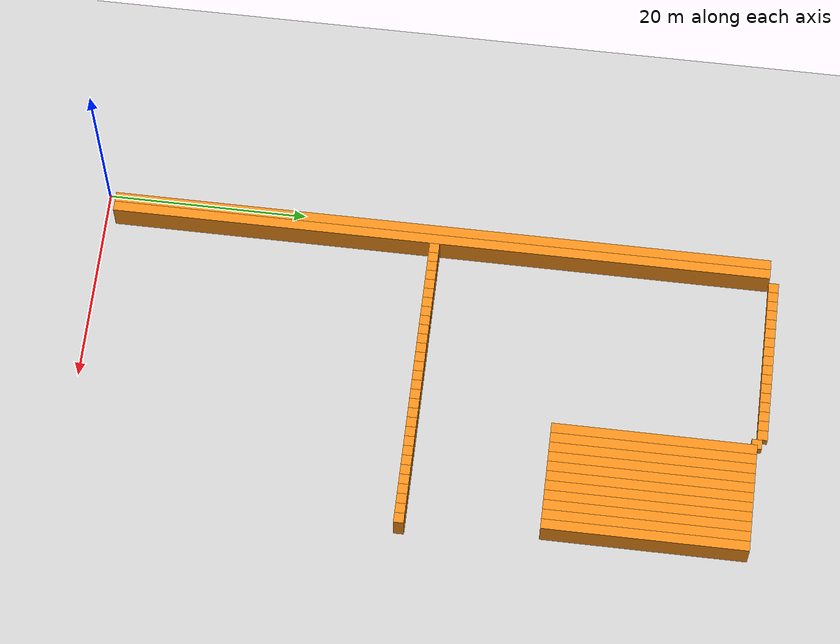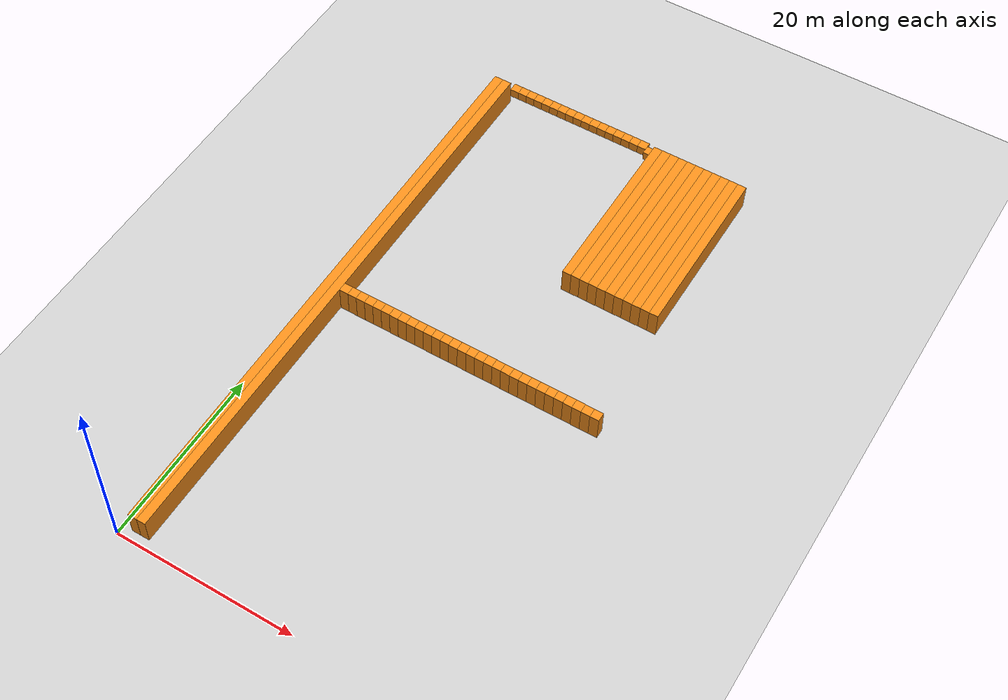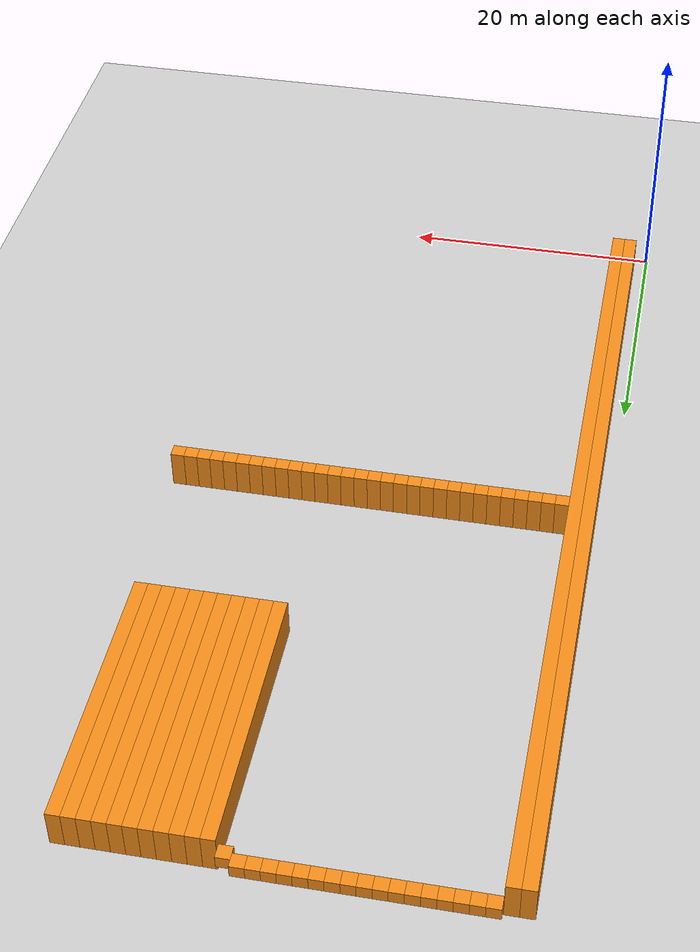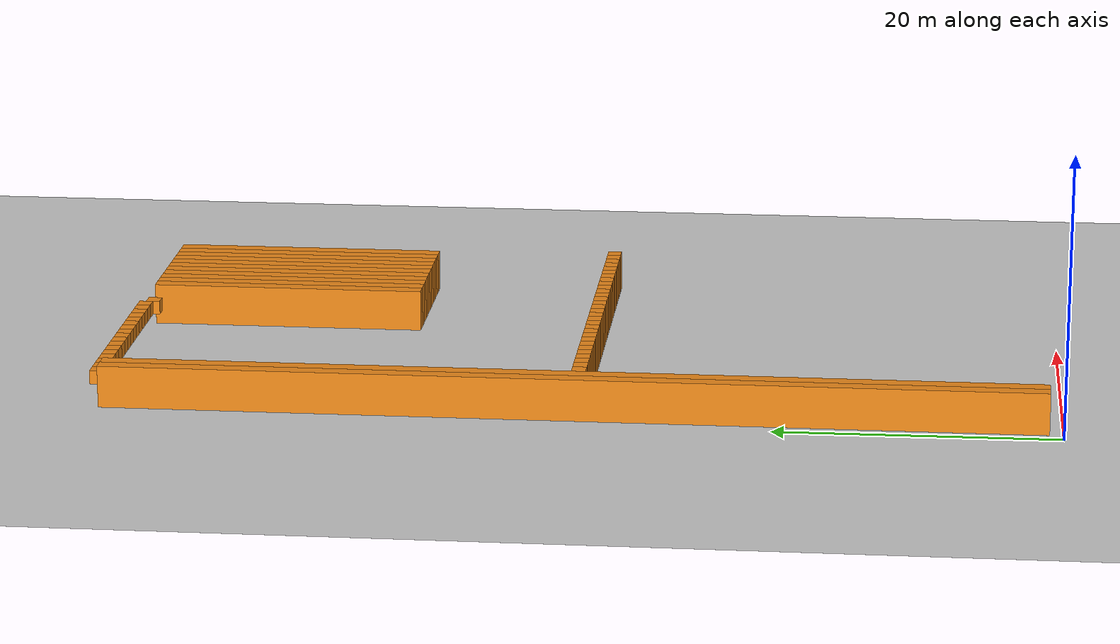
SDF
<sdf version="1.6">
 <world name="default">
  <include><uri>model://ground_plane</uri></include>
  <model name="unit_box_000">
   <pose>1.50    34.00     1.50 0 0 0</pose>
   <static>1</static>
   <link name="link">
    <inertial>
     <mass>5000</mass>
     <inertia><ixx>200</ixx><ixy>0</ixy><ixz>0</ixz><iyy>200</iyy><iyz>0</iyz><izz>200</izz></inertia>
    </inertial>
    <collision name="collision"><geometry><box><size>1 66 3</size></box></geometry></collision>
    <visual name="visual">
     <geometry><box><size>1 66 3</size></box></geometry>
     <material>
      <script><name>Gazebo/Orange</name><uri>file://media/materials/scripts/gazebo.material</uri></script>
     </material>
    </visual>
   </link>
  </model>
  <model name="unit_box_001">
   <pose>2.50    34.00     1.50 0 0 0</pose>
   <static>1</static>
   <link name="link">
    <inertial>
     <mass>5000</mass>
     <inertia><ixx>200</ixx><ixy>0</ixy><ixz>0</ixz><iyy>200</iyy><iyz>0</iyz><izz>200</izz></inertia>
    </inertial>
    <collision name="collision"><geometry><box><size>1 66 3</size></box></geometry></collision>
    <visual name="visual">
     <geometry><box><size>1 66 3</size></box></geometry>
     <material>
      <script><name>Gazebo/Orange</name><uri>file://media/materials/scripts/gazebo.material</uri></script>
     </material>
    </visual>
   </link>
  </model>
  <model name="unit_box_003">
   <pose>3.50    33.50     1.50 0 0 0</pose>
   <static>1</static>
   <link name="link">
    <inertial>
     <mass>5000</mass>
     <inertia><ixx>200</ixx><ixy>0</ixy><ixz>0</ixz><iyy>200</iyy><iyz>0</iyz><izz>200</izz></inertia>
    </inertial>
    <collision name="collision"><geometry><box><size>1 1 3</size></box></geometry></collision>
    <visual name="visual">
     <geometry><box><size>1 1 3</size></box></geometry>
     <material>
      <script><name>Gazebo/Orange</name><uri>file://media/materials/scripts/gazebo.material</uri></script>
     </material>
    </visual>
   </link>
  </model>
  <model name="unit_box_004">
   <pose>3.50    67.50     1.50 0 0 0</pose>
   <static>1</static>
   <link name="link">
    <inertial>
     <mass>5000</mass>
     <inertia><ixx>200</ixx><ixy>0</ixy><ixz>0</ixz><iyy>200</iyy><iyz>0</iyz><izz>200</izz></inertia>
    </inertial>
    <collision name="collision"><geometry><box><size>1 1 1</size></box></geometry></collision>
    <visual name="visual">
     <geometry><box><size>1 1 1</size></box></geometry>
     <material>
      <script><name>Gazebo/Orange</name><uri>file://media/materials/scripts/gazebo.material</uri></script>
     </material>
    </visual>
   </link>
  </model>
  <model name="unit_box_006">
   <pose>4.50    33.50     1.50 0 0 0</pose>
   <static>1</static>
   <link name="link">
    <inertial>
     <mass>5000</mass>
     <inertia><ixx>200</ixx><ixy>0</ixy><ixz>0</ixz><iyy>200</iyy><iyz>0</iyz><izz>200</izz></inertia>
    </inertial>
    <collision name="collision"><geometry><box><size>1 1 3</size></box></geometry></collision>
    <visual name="visual">
     <geometry><box><size>1 1 3</size></box></geometry>
     <material>
      <script><name>Gazebo/Orange</name><uri>file://media/materials/scripts/gazebo.material</uri></script>
     </material>
    </visual>
   </link>
  </model>
  <model name="unit_box_007">
   <pose>4.50    67.50     1.50 0 0 0</pose>
   <static>1</static>
   <link name="link">
    <inertial>
     <mass>5000</mass>
     <inertia><ixx>200</ixx><ixy>0</ixy><ixz>0</ixz><iyy>200</iyy><iyz>0</iyz><izz>200</izz></inertia>
    </inertial>
    <collision name="collision"><geometry><box><size>1 1 1</size></box></geometry></collision>
    <visual name="visual">
     <geometry><box><size>1 1 1</size></box></geometry>
     <material>
      <script><name>Gazebo/Orange</name><uri>file://media/materials/scripts/gazebo.material</uri></script>
     </material>
    </visual>
   </link>
  </model>
  <model name="unit_box_009">
   <pose>5.50    33.50     1.50 0 0 0</pose>
   <static>1</static>
   <link name="link">
    <inertial>
     <mass>5000</mass>
     <inertia><ixx>200</ixx><ixy>0</ixy><ixz>0</ixz><iyy>200</iyy><iyz>0</iyz><izz>200</izz></inertia>
    </inertial>
    <collision name="collision"><geometry><box><size>1 1 3</size></box></geometry></collision>
    <visual name="visual">
     <geometry><box><size>1 1 3</size></box></geometry>
     <material>
      <script><name>Gazebo/Orange</name><uri>file://media/materials/scripts/gazebo.material</uri></script>
     </material>
    </visual>
   </link>
  </model>
  <model name="unit_box_010">
   <pose>5.50    67.50     1.50 0 0 0</pose>
   <static>1</static>
   <link name="link">
    <inertial>
     <mass>5000</mass>
     <inertia><ixx>200</ixx><ixy>0</ixy><ixz>0</ixz><iyy>200</iyy><iyz>0</iyz><izz>200</izz></inertia>
    </inertial>
    <collision name="collision"><geometry><box><size>1 1 1</size></box></geometry></collision>
    <visual name="visual">
     <geometry><box><size>1 1 1</size></box></geometry>
     <material>
      <script><name>Gazebo/Orange</name><uri>file://media/materials/scripts/gazebo.material</uri></script>
     </material>
    </visual>
   </link>
  </model>
  <model name="unit_box_012">
   <pose>6.50    33.50     1.50 0 0 0</pose>
   <static>1</static>
   <link name="link">
    <inertial>
     <mass>5000</mass>
     <inertia><ixx>200</ixx><ixy>0</ixy><ixz>0</ixz><iyy>200</iyy><iyz>0</iyz><izz>200</izz></inertia>
    </inertial>
    <collision name="collision"><geometry><box><size>1 1 3</size></box></geometry></collision>
    <visual name="visual">
     <geometry><box><size>1 1 3</size></box></geometry>
     <material>
      <script><name>Gazebo/Orange</name><uri>file://media/materials/scripts/gazebo.material</uri></script>
     </material>
    </visual>
   </link>
  </model>
  <model name="unit_box_013">
   <pose>6.50    67.50     1.50 0 0 0</pose>
   <static>1</static>
   <link name="link">
    <inertial>
     <mass>5000</mass>
     <inertia><ixx>200</ixx><ixy>0</ixy><ixz>0</ixz><iyy>200</iyy><iyz>0</iyz><izz>200</izz></inertia>
    </inertial>
    <collision name="collision"><geometry><box><size>1 1 1</size></box></geometry></collision>
    <visual name="visual">
     <geometry><box><size>1 1 1</size></box></geometry>
     <material>
      <script><name>Gazebo/Orange</name><uri>file://media/materials/scripts/gazebo.material</uri></script>
     </material>
    </visual>
   </link>
  </model>
  <model name="unit_box_015">
   <pose>7.50    33.50     1.50 0 0 0</pose>
   <static>1</static>
   <link name="link">
    <inertial>
     <mass>5000</mass>
     <inertia><ixx>200</ixx><ixy>0</ixy><ixz>0</ixz><iyy>200</iyy><iyz>0</iyz><izz>200</izz></inertia>
    </inertial>
    <collision name="collision"><geometry><box><size>1 1 3</size></box></geometry></collision>
    <visual name="visual">
     <geometry><box><size>1 1 3</size></box></geometry>
     <material>
      <script><name>Gazebo/Orange</name><uri>file://media/materials/scripts/gazebo.material</uri></script>
     </material>
    </visual>
   </link>
  </model>
  <model name="unit_box_016">
   <pose>7.50    67.50     1.50 0 0 0</pose>
   <static>1</static>
   <link name="link">
    <inertial>
     <mass>5000</mass>
     <inertia><ixx>200</ixx><ixy>0</ixy><ixz>0</ixz><iyy>200</iyy><iyz>0</iyz><izz>200</izz></inertia>
    </inertial>
    <collision name="collision"><geometry><box><size>1 1 1</size></box></geometry></collision>
    <visual name="visual">
     <geometry><box><size>1 1 1</size></box></geometry>
     <material>
      <script><name>Gazebo/Orange</name><uri>file://media/materials/scripts/gazebo.material</uri></script>
     </material>
    </visual>
   </link>
  </model>
  <model name="unit_box_018">
   <pose>8.50    33.50     1.50 0 0 0</pose>
   <static>1</static>
   <link name="link">
    <inertial>
     <mass>5000</mass>
     <inertia><ixx>200</ixx><ixy>0</ixy><ixz>0</ixz><iyy>200</iyy><iyz>0</iyz><izz>200</izz></inertia>
    </inertial>
    <collision name="collision"><geometry><box><size>1 1 3</size></box></geometry></collision>
    <visual name="visual">
     <geometry><box><size>1 1 3</size></box></geometry>
     <material>
      <script><name>Gazebo/Orange</name><uri>file://media/materials/scripts/gazebo.material</uri></script>
     </material>
    </visual>
   </link>
  </model>
  <model name="unit_box_019">
   <pose>8.50    67.50     1.50 0 0 0</pose>
   <static>1</static>
   <link name="link">
    <inertial>
     <mass>5000</mass>
     <inertia><ixx>200</ixx><ixy>0</ixy><ixz>0</ixz><iyy>200</iyy><iyz>0</iyz><izz>200</izz></inertia>
    </inertial>
    <collision name="collision"><geometry><box><size>1 1 1</size></box></geometry></collision>
    <visual name="visual">
     <geometry><box><size>1 1 1</size></box></geometry>
     <material>
      <script><name>Gazebo/Orange</name><uri>file://media/materials/scripts/gazebo.material</uri></script>
     </material>
    </visual>
   </link>
  </model>
  <model name="unit_box_021">
   <pose>9.50    33.50     1.50 0 0 0</pose>
   <static>1</static>
   <link name="link">
    <inertial>
     <mass>5000</mass>
     <inertia><ixx>200</ixx><ixy>0</ixy><ixz>0</ixz><iyy>200</iyy><iyz>0</iyz><izz>200</izz></inertia>
    </inertial>
    <collision name="collision"><geometry><box><size>1 1 3</size></box></geometry></collision>
    <visual name="visual">
     <geometry><box><size>1 1 3</size></box></geometry>
     <material>
      <script><name>Gazebo/Orange</name><uri>file://media/materials/scripts/gazebo.material</uri></script>
     </material>
    </visual>
   </link>
  </model>
  <model name="unit_box_022">
   <pose>9.50    67.50     1.50 0 0 0</pose>
   <static>1</static>
   <link name="link">
    <inertial>
     <mass>5000</mass>
     <inertia><ixx>200</ixx><ixy>0</ixy><ixz>0</ixz><iyy>200</iyy><iyz>0</iyz><izz>200</izz></inertia>
    </inertial>
    <collision name="collision"><geometry><box><size>1 1 1</size></box></geometry></collision>
    <visual name="visual">
     <geometry><box><size>1 1 1</size></box></geometry>
     <material>
      <script><name>Gazebo/Orange</name><uri>file://media/materials/scripts/gazebo.material</uri></script>
     </material>
    </visual>
   </link>
  </model>
  <model name="unit_box_024">
   <pose>10.50    33.50     1.50 0 0 0</pose>
   <static>1</static>
   <link name="link">
    <inertial>
     <mass>5000</mass>
     <inertia><ixx>200</ixx><ixy>0</ixy><ixz>0</ixz><iyy>200</iyy><iyz>0</iyz><izz>200</izz></inertia>
    </inertial>
    <collision name="collision"><geometry><box><size>1 1 3</size></box></geometry></collision>
    <visual name="visual">
     <geometry><box><size>1 1 3</size></box></geometry>
     <material>
      <script><name>Gazebo/Orange</name><uri>file://media/materials/scripts/gazebo.material</uri></script>
     </material>
    </visual>
   </link>
  </model>
  <model name="unit_box_025">
   <pose>10.50    67.50     1.50 0 0 0</pose>
   <static>1</static>
   <link name="link">
    <inertial>
     <mass>5000</mass>
     <inertia><ixx>200</ixx><ixy>0</ixy><ixz>0</ixz><iyy>200</iyy><iyz>0</iyz><izz>200</izz></inertia>
    </inertial>
    <collision name="collision"><geometry><box><size>1 1 1</size></box></geometry></collision>
    <visual name="visual">
     <geometry><box><size>1 1 1</size></box></geometry>
     <material>
      <script><name>Gazebo/Orange</name><uri>file://media/materials/scripts/gazebo.material</uri></script>
     </material>
    </visual>
   </link>
  </model>
  <model name="unit_box_027">
   <pose>11.50    33.50     1.50 0 0 0</pose>
   <static>1</static>
   <link name="link">
    <inertial>
     <mass>5000</mass>
     <inertia><ixx>200</ixx><ixy>0</ixy><ixz>0</ixz><iyy>200</iyy><iyz>0</iyz><izz>200</izz></inertia>
    </inertial>
    <collision name="collision"><geometry><box><size>1 1 3</size></box></geometry></collision>
    <visual name="visual">
     <geometry><box><size>1 1 3</size></box></geometry>
     <material>
      <script><name>Gazebo/Orange</name><uri>file://media/materials/scripts/gazebo.material</uri></script>
     </material>
    </visual>
   </link>
  </model>
  <model name="unit_box_028">
   <pose>11.50    67.50     1.50 0 0 0</pose>
   <static>1</static>
   <link name="link">
    <inertial>
     <mass>5000</mass>
     <inertia><ixx>200</ixx><ixy>0</ixy><ixz>0</ixz><iyy>200</iyy><iyz>0</iyz><izz>200</izz></inertia>
    </inertial>
    <collision name="collision"><geometry><box><size>1 1 1</size></box></geometry></collision>
    <visual name="visual">
     <geometry><box><size>1 1 1</size></box></geometry>
     <material>
      <script><name>Gazebo/Orange</name><uri>file://media/materials/scripts/gazebo.material</uri></script>
     </material>
    </visual>
   </link>
  </model>
  <model name="unit_box_030">
   <pose>12.50    33.50     1.50 0 0 0</pose>
   <static>1</static>
   <link name="link">
    <inertial>
     <mass>5000</mass>
     <inertia><ixx>200</ixx><ixy>0</ixy><ixz>0</ixz><iyy>200</iyy><iyz>0</iyz><izz>200</izz></inertia>
    </inertial>
    <collision name="collision"><geometry><box><size>1 1 3</size></box></geometry></collision>
    <visual name="visual">
     <geometry><box><size>1 1 3</size></box></geometry>
     <material>
      <script><name>Gazebo/Orange</name><uri>file://media/materials/scripts/gazebo.material</uri></script>
     </material>
    </visual>
   </link>
  </model>
  <model name="unit_box_031">
   <pose>12.50    67.50     1.50 0 0 0</pose>
   <static>1</static>
   <link name="link">
    <inertial>
     <mass>5000</mass>
     <inertia><ixx>200</ixx><ixy>0</ixy><ixz>0</ixz><iyy>200</iyy><iyz>0</iyz><izz>200</izz></inertia>
    </inertial>
    <collision name="collision"><geometry><box><size>1 1 1</size></box></geometry></collision>
    <visual name="visual">
     <geometry><box><size>1 1 1</size></box></geometry>
     <material>
      <script><name>Gazebo/Orange</name><uri>file://media/materials/scripts/gazebo.material</uri></script>
     </material>
    </visual>
   </link>
  </model>
  <model name="unit_box_033">
   <pose>13.50    33.50     1.50 0 0 0</pose>
   <static>1</static>
   <link name="link">
    <inertial>
     <mass>5000</mass>
     <inertia><ixx>200</ixx><ixy>0</ixy><ixz>0</ixz><iyy>200</iyy><iyz>0</iyz><izz>200</izz></inertia>
    </inertial>
    <collision name="collision"><geometry><box><size>1 1 3</size></box></geometry></collision>
    <visual name="visual">
     <geometry><box><size>1 1 3</size></box></geometry>
     <material>
      <script><name>Gazebo/Orange</name><uri>file://media/materials/scripts/gazebo.material</uri></script>
     </material>
    </visual>
   </link>
  </model>
  <model name="unit_box_034">
   <pose>13.50    67.50     1.50 0 0 0</pose>
   <static>1</static>
   <link name="link">
    <inertial>
     <mass>5000</mass>
     <inertia><ixx>200</ixx><ixy>0</ixy><ixz>0</ixz><iyy>200</iyy><iyz>0</iyz><izz>200</izz></inertia>
    </inertial>
    <collision name="collision"><geometry><box><size>1 1 1</size></box></geometry></collision>
    <visual name="visual">
     <geometry><box><size>1 1 1</size></box></geometry>
     <material>
      <script><name>Gazebo/Orange</name><uri>file://media/materials/scripts/gazebo.material</uri></script>
     </material>
    </visual>
   </link>
  </model>
  <model name="unit_box_036">
   <pose>14.50    33.50     1.50 0 0 0</pose>
   <static>1</static>
   <link name="link">
    <inertial>
     <mass>5000</mass>
     <inertia><ixx>200</ixx><ixy>0</ixy><ixz>0</ixz><iyy>200</iyy><iyz>0</iyz><izz>200</izz></inertia>
    </inertial>
    <collision name="collision"><geometry><box><size>1 1 3</size></box></geometry></collision>
    <visual name="visual">
     <geometry><box><size>1 1 3</size></box></geometry>
     <material>
      <script><name>Gazebo/Orange</name><uri>file://media/materials/scripts/gazebo.material</uri></script>
     </material>
    </visual>
   </link>
  </model>
  <model name="unit_box_037">
   <pose>14.50    67.50     1.50 0 0 0</pose>
   <static>1</static>
   <link name="link">
    <inertial>
     <mass>5000</mass>
     <inertia><ixx>200</ixx><ixy>0</ixy><ixz>0</ixz><iyy>200</iyy><iyz>0</iyz><izz>200</izz></inertia>
    </inertial>
    <collision name="collision"><geometry><box><size>1 1 1</size></box></geometry></collision>
    <visual name="visual">
     <geometry><box><size>1 1 1</size></box></geometry>
     <material>
      <script><name>Gazebo/Orange</name><uri>file://media/materials/scripts/gazebo.material</uri></script>
     </material>
    </visual>
   </link>
  </model>
  <model name="unit_box_039">
   <pose>15.50    33.50     1.50 0 0 0</pose>
   <static>1</static>
   <link name="link">
    <inertial>
     <mass>5000</mass>
     <inertia><ixx>200</ixx><ixy>0</ixy><ixz>0</ixz><iyy>200</iyy><iyz>0</iyz><izz>200</izz></inertia>
    </inertial>
    <collision name="collision"><geometry><box><size>1 1 3</size></box></geometry></collision>
    <visual name="visual">
     <geometry><box><size>1 1 3</size></box></geometry>
     <material>
      <script><name>Gazebo/Orange</name><uri>file://media/materials/scripts/gazebo.material</uri></script>
     </material>
    </visual>
   </link>
  </model>
  <model name="unit_box_040">
   <pose>15.50    67.50     1.50 0 0 0</pose>
   <static>1</static>
   <link name="link">
    <inertial>
     <mass>5000</mass>
     <inertia><ixx>200</ixx><ixy>0</ixy><ixz>0</ixz><iyy>200</iyy><iyz>0</iyz><izz>200</izz></inertia>
    </inertial>
    <collision name="collision"><geometry><box><size>1 1 1</size></box></geometry></collision>
    <visual name="visual">
     <geometry><box><size>1 1 1</size></box></geometry>
     <material>
      <script><name>Gazebo/Orange</name><uri>file://media/materials/scripts/gazebo.material</uri></script>
     </material>
    </visual>
   </link>
  </model>
  <model name="unit_box_042">
   <pose>16.50    33.50     1.50 0 0 0</pose>
   <static>1</static>
   <link name="link">
    <inertial>
     <mass>5000</mass>
     <inertia><ixx>200</ixx><ixy>0</ixy><ixz>0</ixz><iyy>200</iyy><iyz>0</iyz><izz>200</izz></inertia>
    </inertial>
    <collision name="collision"><geometry><box><size>1 1 3</size></box></geometry></collision>
    <visual name="visual">
     <geometry><box><size>1 1 3</size></box></geometry>
     <material>
      <script><name>Gazebo/Orange</name><uri>file://media/materials/scripts/gazebo.material</uri></script>
     </material>
    </visual>
   </link>
  </model>
  <model name="unit_box_043">
   <pose>16.50    67.50     1.50 0 0 0</pose>
   <static>1</static>
   <link name="link">
    <inertial>
     <mass>5000</mass>
     <inertia><ixx>200</ixx><ixy>0</ixy><ixz>0</ixz><iyy>200</iyy><iyz>0</iyz><izz>200</izz></inertia>
    </inertial>
    <collision name="collision"><geometry><box><size>1 1 1</size></box></geometry></collision>
    <visual name="visual">
     <geometry><box><size>1 1 1</size></box></geometry>
     <material>
      <script><name>Gazebo/Orange</name><uri>file://media/materials/scripts/gazebo.material</uri></script>
     </material>
    </visual>
   </link>
  </model>
  <model name="unit_box_045">
   <pose>17.50    33.50     1.50 0 0 0</pose>
   <static>1</static>
   <link name="link">
    <inertial>
     <mass>5000</mass>
     <inertia><ixx>200</ixx><ixy>0</ixy><ixz>0</ixz><iyy>200</iyy><iyz>0</iyz><izz>200</izz></inertia>
    </inertial>
    <collision name="collision"><geometry><box><size>1 1 3</size></box></geometry></collision>
    <visual name="visual">
     <geometry><box><size>1 1 3</size></box></geometry>
     <material>
      <script><name>Gazebo/Orange</name><uri>file://media/materials/scripts/gazebo.material</uri></script>
     </material>
    </visual>
   </link>
  </model>
  <model name="unit_box_046">
   <pose>17.50    67.50     1.50 0 0 0</pose>
   <static>1</static>
   <link name="link">
    <inertial>
     <mass>5000</mass>
     <inertia><ixx>200</ixx><ixy>0</ixy><ixz>0</ixz><iyy>200</iyy><iyz>0</iyz><izz>200</izz></inertia>
    </inertial>
    <collision name="collision"><geometry><box><size>1 1 1</size></box></geometry></collision>
    <visual name="visual">
     <geometry><box><size>1 1 1</size></box></geometry>
     <material>
      <script><name>Gazebo/Orange</name><uri>file://media/materials/scripts/gazebo.material</uri></script>
     </material>
    </visual>
   </link>
  </model>
  <model name="unit_box_048">
   <pose>18.50    33.50     1.50 0 0 0</pose>
   <static>1</static>
   <link name="link">
    <inertial>
     <mass>5000</mass>
     <inertia><ixx>200</ixx><ixy>0</ixy><ixz>0</ixz><iyy>200</iyy><iyz>0</iyz><izz>200</izz></inertia>
    </inertial>
    <collision name="collision"><geometry><box><size>1 1 3</size></box></geometry></collision>
    <visual name="visual">
     <geometry><box><size>1 1 3</size></box></geometry>
     <material>
      <script><name>Gazebo/Orange</name><uri>file://media/materials/scripts/gazebo.material</uri></script>
     </material>
    </visual>
   </link>
  </model>
  <model name="unit_box_049">
   <pose>18.50    67.50     1.50 0 0 0</pose>
   <static>1</static>
   <link name="link">
    <inertial>
     <mass>5000</mass>
     <inertia><ixx>200</ixx><ixy>0</ixy><ixz>0</ixz><iyy>200</iyy><iyz>0</iyz><izz>200</izz></inertia>
    </inertial>
    <collision name="collision"><geometry><box><size>1 1 1</size></box></geometry></collision>
    <visual name="visual">
     <geometry><box><size>1 1 1</size></box></geometry>
     <material>
      <script><name>Gazebo/Orange</name><uri>file://media/materials/scripts/gazebo.material</uri></script>
     </material>
    </visual>
   </link>
  </model>
  <model name="unit_box_051">
   <pose>19.50    33.50     1.50 0 0 0</pose>
   <static>1</static>
   <link name="link">
    <inertial>
     <mass>5000</mass>
     <inertia><ixx>200</ixx><ixy>0</ixy><ixz>0</ixz><iyy>200</iyy><iyz>0</iyz><izz>200</izz></inertia>
    </inertial>
    <collision name="collision"><geometry><box><size>1 1 3</size></box></geometry></collision>
    <visual name="visual">
     <geometry><box><size>1 1 3</size></box></geometry>
     <material>
      <script><name>Gazebo/Orange</name><uri>file://media/materials/scripts/gazebo.material</uri></script>
     </material>
    </visual>
   </link>
  </model>
  <model name="unit_box_052">
   <pose>19.50    67.50     1.50 0 0 0</pose>
   <static>1</static>
   <link name="link">
    <inertial>
     <mass>5000</mass>
     <inertia><ixx>200</ixx><ixy>0</ixy><ixz>0</ixz><iyy>200</iyy><iyz>0</iyz><izz>200</izz></inertia>
    </inertial>
    <collision name="collision"><geometry><box><size>1 1 1</size></box></geometry></collision>
    <visual name="visual">
     <geometry><box><size>1 1 1</size></box></geometry>
     <material>
      <script><name>Gazebo/Orange</name><uri>file://media/materials/scripts/gazebo.material</uri></script>
     </material>
    </visual>
   </link>
  </model>
  <model name="unit_box_054">
   <pose>20.50    33.50     1.50 0 0 0</pose>
   <static>1</static>
   <link name="link">
    <inertial>
     <mass>5000</mass>
     <inertia><ixx>200</ixx><ixy>0</ixy><ixz>0</ixz><iyy>200</iyy><iyz>0</iyz><izz>200</izz></inertia>
    </inertial>
    <collision name="collision"><geometry><box><size>1 1 3</size></box></geometry></collision>
    <visual name="visual">
     <geometry><box><size>1 1 3</size></box></geometry>
     <material>
      <script><name>Gazebo/Orange</name><uri>file://media/materials/scripts/gazebo.material</uri></script>
     </material>
    </visual>
   </link>
  </model>
  <model name="unit_box_055">
   <pose>20.50    67.00     1.50 0 0 0</pose>
   <static>1</static>
   <link name="link">
    <inertial>
     <mass>5000</mass>
     <inertia><ixx>200</ixx><ixy>0</ixy><ixz>0</ixz><iyy>200</iyy><iyz>0</iyz><izz>200</izz></inertia>
    </inertial>
    <collision name="collision"><geometry><box><size>1 1 1</size></box></geometry></collision>
    <visual name="visual">
     <geometry><box><size>1 1 1</size></box></geometry>
     <material>
      <script><name>Gazebo/Orange</name><uri>file://media/materials/scripts/gazebo.material</uri></script>
     </material>
    </visual>
   </link>
  </model>
  <model name="unit_box_057">
   <pose>21.50    33.50     1.50 0 0 0</pose>
   <static>1</static>
   <link name="link">
    <inertial>
     <mass>5000</mass>
     <inertia><ixx>200</ixx><ixy>0</ixy><ixz>0</ixz><iyy>200</iyy><iyz>0</iyz><izz>200</izz></inertia>
    </inertial>
    <collision name="collision"><geometry><box><size>1 1 3</size></box></geometry></collision>
    <visual name="visual">
     <geometry><box><size>1 1 3</size></box></geometry>
     <material>
      <script><name>Gazebo/Orange</name><uri>file://media/materials/scripts/gazebo.material</uri></script>
     </material>
    </visual>
   </link>
  </model>
  <model name="unit_box_058">
   <pose>21.50    57.00     1.50 0 0 0</pose>
   <static>1</static>
   <link name="link">
    <inertial>
     <mass>5000</mass>
     <inertia><ixx>200</ixx><ixy>0</ixy><ixz>0</ixz><iyy>200</iyy><iyz>0</iyz><izz>200</izz></inertia>
    </inertial>
    <collision name="collision"><geometry><box><size>1 20 3</size></box></geometry></collision>
    <visual name="visual">
     <geometry><box><size>1 20 3</size></box></geometry>
     <material>
      <script><name>Gazebo/Orange</name><uri>file://media/materials/scripts/gazebo.material</uri></script>
     </material>
    </visual>
   </link>
  </model>
  <model name="unit_box_060">
   <pose>22.50    33.50     1.50 0 0 0</pose>
   <static>1</static>
   <link name="link">
    <inertial>
     <mass>5000</mass>
     <inertia><ixx>200</ixx><ixy>0</ixy><ixz>0</ixz><iyy>200</iyy><iyz>0</iyz><izz>200</izz></inertia>
    </inertial>
    <collision name="collision"><geometry><box><size>1 1 3</size></box></geometry></collision>
    <visual name="visual">
     <geometry><box><size>1 1 3</size></box></geometry>
     <material>
      <script><name>Gazebo/Orange</name><uri>file://media/materials/scripts/gazebo.material</uri></script>
     </material>
    </visual>
   </link>
  </model>
  <model name="unit_box_061">
   <pose>22.50    57.00     1.50 0 0 0</pose>
   <static>1</static>
   <link name="link">
    <inertial>
     <mass>5000</mass>
     <inertia><ixx>200</ixx><ixy>0</ixy><ixz>0</ixz><iyy>200</iyy><iyz>0</iyz><izz>200</izz></inertia>
    </inertial>
    <collision name="collision"><geometry><box><size>1 20 3</size></box></geometry></collision>
    <visual name="visual">
     <geometry><box><size>1 20 3</size></box></geometry>
     <material>
      <script><name>Gazebo/Orange</name><uri>file://media/materials/scripts/gazebo.material</uri></script>
     </material>
    </visual>
   </link>
  </model>
  <model name="unit_box_063">
   <pose>23.50    33.50     1.50 0 0 0</pose>
   <static>1</static>
   <link name="link">
    <inertial>
     <mass>5000</mass>
     <inertia><ixx>200</ixx><ixy>0</ixy><ixz>0</ixz><iyy>200</iyy><iyz>0</iyz><izz>200</izz></inertia>
    </inertial>
    <collision name="collision"><geometry><box><size>1 1 3</size></box></geometry></collision>
    <visual name="visual">
     <geometry><box><size>1 1 3</size></box></geometry>
     <material>
      <script><name>Gazebo/Orange</name><uri>file://media/materials/scripts/gazebo.material</uri></script>
     </material>
    </visual>
   </link>
  </model>
  <model name="unit_box_064">
   <pose>23.50    57.00     1.50 0 0 0</pose>
   <static>1</static>
   <link name="link">
    <inertial>
     <mass>5000</mass>
     <inertia><ixx>200</ixx><ixy>0</ixy><ixz>0</ixz><iyy>200</iyy><iyz>0</iyz><izz>200</izz></inertia>
    </inertial>
    <collision name="collision"><geometry><box><size>1 20 3</size></box></geometry></collision>
    <visual name="visual">
     <geometry><box><size>1 20 3</size></box></geometry>
     <material>
      <script><name>Gazebo/Orange</name><uri>file://media/materials/scripts/gazebo.material</uri></script>
     </material>
    </visual>
   </link>
  </model>
  <model name="unit_box_066">
   <pose>24.50    33.50     1.50 0 0 0</pose>
   <static>1</static>
   <link name="link">
    <inertial>
     <mass>5000</mass>
     <inertia><ixx>200</ixx><ixy>0</ixy><ixz>0</ixz><iyy>200</iyy><iyz>0</iyz><izz>200</izz></inertia>
    </inertial>
    <collision name="collision"><geometry><box><size>1 1 3</size></box></geometry></collision>
    <visual name="visual">
     <geometry><box><size>1 1 3</size></box></geometry>
     <material>
      <script><name>Gazebo/Orange</name><uri>file://media/materials/scripts/gazebo.material</uri></script>
     </material>
    </visual>
   </link>
  </model>
  <model name="unit_box_067">
   <pose>24.50    57.00     1.50 0 0 0</pose>
   <static>1</static>
   <link name="link">
    <inertial>
     <mass>5000</mass>
     <inertia><ixx>200</ixx><ixy>0</ixy><ixz>0</ixz><iyy>200</iyy><iyz>0</iyz><izz>200</izz></inertia>
    </inertial>
    <collision name="collision"><geometry><box><size>1 20 3</size></box></geometry></collision>
    <visual name="visual">
     <geometry><box><size>1 20 3</size></box></geometry>
     <material>
      <script><name>Gazebo/Orange</name><uri>file://media/materials/scripts/gazebo.material</uri></script>
     </material>
    </visual>
   </link>
  </model>
  <model name="unit_box_069">
   <pose>25.50    33.50     1.50 0 0 0</pose>
   <static>1</static>
   <link name="link">
    <inertial>
     <mass>5000</mass>
     <inertia><ixx>200</ixx><ixy>0</ixy><ixz>0</ixz><iyy>200</iyy><iyz>0</iyz><izz>200</izz></inertia>
    </inertial>
    <collision name="collision"><geometry><box><size>1 1 3</size></box></geometry></collision>
    <visual name="visual">
     <geometry><box><size>1 1 3</size></box></geometry>
     <material>
      <script><name>Gazebo/Orange</name><uri>file://media/materials/scripts/gazebo.material</uri></script>
     </material>
    </visual>
   </link>
  </model>
  <model name="unit_box_070">
   <pose>25.50    57.00     1.50 0 0 0</pose>
   <static>1</static>
   <link name="link">
    <inertial>
     <mass>5000</mass>
     <inertia><ixx>200</ixx><ixy>0</ixy><ixz>0</ixz><iyy>200</iyy><iyz>0</iyz><izz>200</izz></inertia>
    </inertial>
    <collision name="collision"><geometry><box><size>1 20 3</size></box></geometry></collision>
    <visual name="visual">
     <geometry><box><size>1 20 3</size></box></geometry>
     <material>
      <script><name>Gazebo/Orange</name><uri>file://media/materials/scripts/gazebo.material</uri></script>
     </material>
    </visual>
   </link>
  </model>
  <model name="unit_box_072">
   <pose>26.50    33.50     1.50 0 0 0</pose>
   <static>1</static>
   <link name="link">
    <inertial>
     <mass>5000</mass>
     <inertia><ixx>200</ixx><ixy>0</ixy><ixz>0</ixz><iyy>200</iyy><iyz>0</iyz><izz>200</izz></inertia>
    </inertial>
    <collision name="collision"><geometry><box><size>1 1 3</size></box></geometry></collision>
    <visual name="visual">
     <geometry><box><size>1 1 3</size></box></geometry>
     <material>
      <script><name>Gazebo/Orange</name><uri>file://media/materials/scripts/gazebo.material</uri></script>
     </material>
    </visual>
   </link>
  </model>
  <model name="unit_box_073">
   <pose>26.50    57.00     1.50 0 0 0</pose>
   <static>1</static>
   <link name="link">
    <inertial>
     <mass>5000</mass>
     <inertia><ixx>200</ixx><ixy>0</ixy><ixz>0</ixz><iyy>200</iyy><iyz>0</iyz><izz>200</izz></inertia>
    </inertial>
    <collision name="collision"><geometry><box><size>1 20 3</size></box></geometry></collision>
    <visual name="visual">
     <geometry><box><size>1 20 3</size></box></geometry>
     <material>
      <script><name>Gazebo/Orange</name><uri>file://media/materials/scripts/gazebo.material</uri></script>
     </material>
    </visual>
   </link>
  </model>
  <model name="unit_box_075">
   <pose>27.50    33.50     1.50 0 0 0</pose>
   <static>1</static>
   <link name="link">
    <inertial>
     <mass>5000</mass>
     <inertia><ixx>200</ixx><ixy>0</ixy><ixz>0</ixz><iyy>200</iyy><iyz>0</iyz><izz>200</izz></inertia>
    </inertial>
    <collision name="collision"><geometry><box><size>1 1 3</size></box></geometry></collision>
    <visual name="visual">
     <geometry><box><size>1 1 3</size></box></geometry>
     <material>
      <script><name>Gazebo/Orange</name><uri>file://media/materials/scripts/gazebo.material</uri></script>
     </material>
    </visual>
   </link>
  </model>
  <model name="unit_box_076">
   <pose>27.50    57.00     1.50 0 0 0</pose>
   <static>1</static>
   <link name="link">
    <inertial>
     <mass>5000</mass>
     <inertia><ixx>200</ixx><ixy>0</ixy><ixz>0</ixz><iyy>200</iyy><iyz>0</iyz><izz>200</izz></inertia>
    </inertial>
    <collision name="collision"><geometry><box><size>1 20 3</size></box></geometry></collision>
    <visual name="visual">
     <geometry><box><size>1 20 3</size></box></geometry>
     <material>
      <script><name>Gazebo/Orange</name><uri>file://media/materials/scripts/gazebo.material</uri></script>
     </material>
    </visual>
   </link>
  </model>
  <model name="unit_box_078">
   <pose>28.50    33.50     1.50 0 0 0</pose>
   <static>1</static>
   <link name="link">
    <inertial>
     <mass>5000</mass>
     <inertia><ixx>200</ixx><ixy>0</ixy><ixz>0</ixz><iyy>200</iyy><iyz>0</iyz><izz>200</izz></inertia>
    </inertial>
    <collision name="collision"><geometry><box><size>1 1 3</size></box></geometry></collision>
    <visual name="visual">
     <geometry><box><size>1 1 3</size></box></geometry>
     <material>
      <script><name>Gazebo/Orange</name><uri>file://media/materials/scripts/gazebo.material</uri></script>
     </material>
    </visual>
   </link>
  </model>
  <model name="unit_box_079">
   <pose>28.50    57.00     1.50 0 0 0</pose>
   <static>1</static>
   <link name="link">
    <inertial>
     <mass>5000</mass>
     <inertia><ixx>200</ixx><ixy>0</ixy><ixz>0</ixz><iyy>200</iyy><iyz>0</iyz><izz>200</izz></inertia>
    </inertial>
    <collision name="collision"><geometry><box><size>1 20 3</size></box></geometry></collision>
    <visual name="visual">
     <geometry><box><size>1 20 3</size></box></geometry>
     <material>
      <script><name>Gazebo/Orange</name><uri>file://media/materials/scripts/gazebo.material</uri></script>
     </material>
    </visual>
   </link>
  </model>
  <model name="unit_box_081">
   <pose>29.50    33.50     1.50 0 0 0</pose>
   <static>1</static>
   <link name="link">
    <inertial>
     <mass>5000</mass>
     <inertia><ixx>200</ixx><ixy>0</ixy><ixz>0</ixz><iyy>200</iyy><iyz>0</iyz><izz>200</izz></inertia>
    </inertial>
    <collision name="collision"><geometry><box><size>1 1 3</size></box></geometry></collision>
    <visual name="visual">
     <geometry><box><size>1 1 3</size></box></geometry>
     <material>
      <script><name>Gazebo/Orange</name><uri>file://media/materials/scripts/gazebo.material</uri></script>
     </material>
    </visual>
   </link>
  </model>
  <model name="unit_box_082">
   <pose>29.50    57.00     1.50 0 0 0</pose>
   <static>1</static>
   <link name="link">
    <inertial>
     <mass>5000</mass>
     <inertia><ixx>200</ixx><ixy>0</ixy><ixz>0</ixz><iyy>200</iyy><iyz>0</iyz><izz>200</izz></inertia>
    </inertial>
    <collision name="collision"><geometry><box><size>1 20 3</size></box></geometry></collision>
    <visual name="visual">
     <geometry><box><size>1 20 3</size></box></geometry>
     <material>
      <script><name>Gazebo/Orange</name><uri>file://media/materials/scripts/gazebo.material</uri></script>
     </material>
    </visual>
   </link>
  </model>
  <model name="unit_box_084">
   <pose>30.50    33.50     1.50 0 0 0</pose>
   <static>1</static>
   <link name="link">
    <inertial>
     <mass>5000</mass>
     <inertia><ixx>200</ixx><ixy>0</ixy><ixz>0</ixz><iyy>200</iyy><iyz>0</iyz><izz>200</izz></inertia>
    </inertial>
    <collision name="collision"><geometry><box><size>1 1 3</size></box></geometry></collision>
    <visual name="visual">
     <geometry><box><size>1 1 3</size></box></geometry>
     <material>
      <script><name>Gazebo/Orange</name><uri>file://media/materials/scripts/gazebo.material</uri></script>
     </material>
    </visual>
   </link>
  </model>
  <model name="unit_box_085">
   <pose>30.50    57.00     1.50 0 0 0</pose>
   <static>1</static>
   <link name="link">
    <inertial>
     <mass>5000</mass>
     <inertia><ixx>200</ixx><ixy>0</ixy><ixz>0</ixz><iyy>200</iyy><iyz>0</iyz><izz>200</izz></inertia>
    </inertial>
    <collision name="collision"><geometry><box><size>1 20 3</size></box></geometry></collision>
    <visual name="visual">
     <geometry><box><size>1 20 3</size></box></geometry>
     <material>
      <script><name>Gazebo/Orange</name><uri>file://media/materials/scripts/gazebo.material</uri></script>
     </material>
    </visual>
   </link>
  </model>
  <model name="unit_box_087">
   <pose>31.50    33.50     1.50 0 0 0</pose>
   <static>1</static>
   <link name="link">
    <inertial>
     <mass>5000</mass>
     <inertia><ixx>200</ixx><ixy>0</ixy><ixz>0</ixz><iyy>200</iyy><iyz>0</iyz><izz>200</izz></inertia>
    </inertial>
    <collision name="collision"><geometry><box><size>1 1 3</size></box></geometry></collision>
    <visual name="visual">
     <geometry><box><size>1 1 3</size></box></geometry>
     <material>
      <script><name>Gazebo/Orange</name><uri>file://media/materials/scripts/gazebo.material</uri></script>
     </material>
    </visual>
   </link>
  </model>
  <model name="unit_box_088">
   <pose>31.50    57.00     1.50 0 0 0</pose>
   <static>1</static>
   <link name="link">
    <inertial>
     <mass>5000</mass>
     <inertia><ixx>200</ixx><ixy>0</ixy><ixz>0</ixz><iyy>200</iyy><iyz>0</iyz><izz>200</izz></inertia>
    </inertial>
    <collision name="collision"><geometry><box><size>1 20 3</size></box></geometry></collision>
    <visual name="visual">
     <geometry><box><size>1 20 3</size></box></geometry>
     <material>
      <script><name>Gazebo/Orange</name><uri>file://media/materials/scripts/gazebo.material</uri></script>
     </material>
    </visual>
   </link>
  </model>
  <model name="unit_box_090">
   <pose>32.50    33.50     1.50 0 0 0</pose>
   <static>1</static>
   <link name="link">
    <inertial>
     <mass>5000</mass>
     <inertia><ixx>200</ixx><ixy>0</ixy><ixz>0</ixz><iyy>200</iyy><iyz>0</iyz><izz>200</izz></inertia>
    </inertial>
    <collision name="collision"><geometry><box><size>1 1 3</size></box></geometry></collision>
    <visual name="visual">
     <geometry><box><size>1 1 3</size></box></geometry>
     <material>
      <script><name>Gazebo/Orange</name><uri>file://media/materials/scripts/gazebo.material</uri></script>
     </material>
    </visual>
   </link>
  </model>
 </world>
</sdf>
